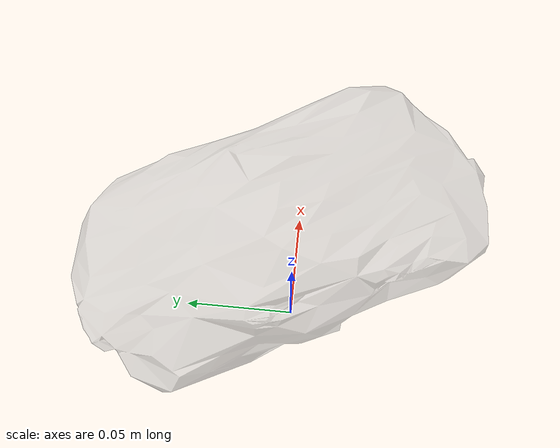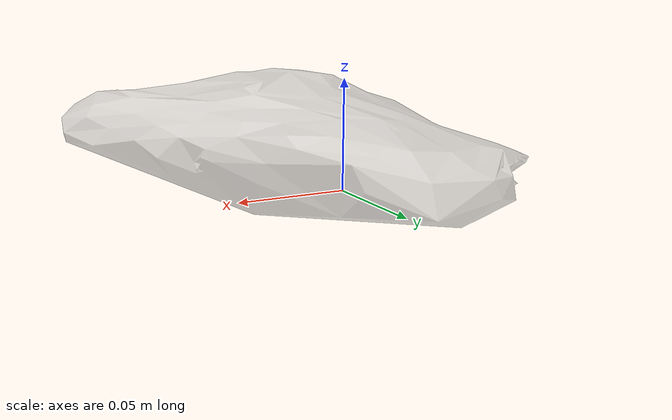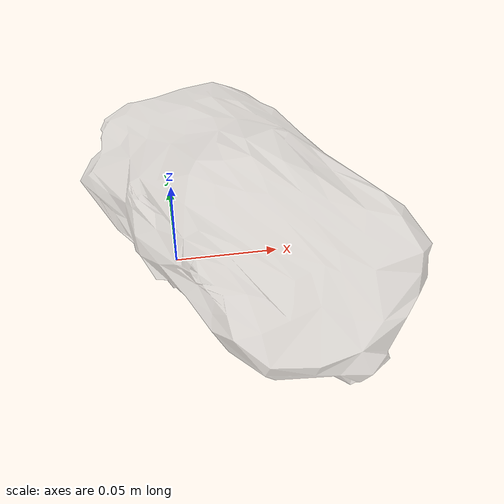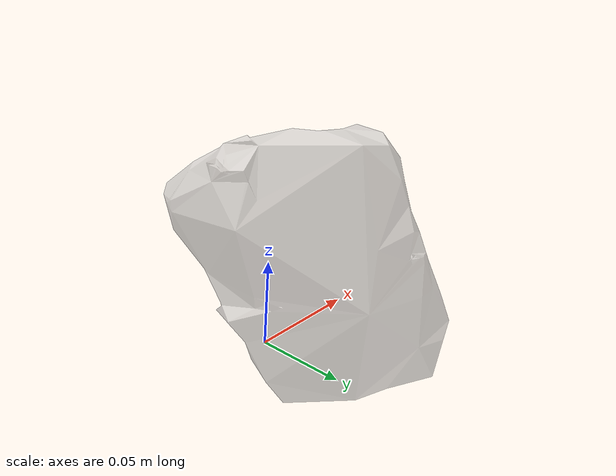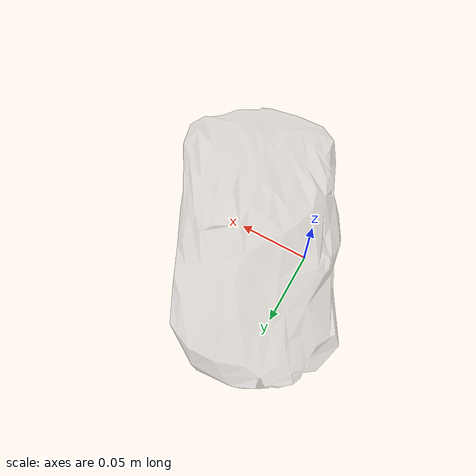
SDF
<?xml version="1.0" ?>
<sdf version="1.4">
  <model name="safety_works_safety_glasses">
    <link name="safety_works_safety_glasses_link">
      <inertial>
        <pose>0 0 0 0 0 0</pose>
        <mass>0.08</mass>
      </inertial>

      <visual name="safety_works_safety_glasses_visual">
        <pose>0 0 0 0 0 0</pose>
        <material>
          <script>
            <uri>model://safety_works_safety_glasses/materials/scripts</uri>
            <uri>model://safety_works_safety_glasses/materials/textures</uri>
            <name>safety_works_safety_glasses</name>
          </script>
        </material>
        <geometry>
          <mesh>
            <uri>model://safety_works_safety_glasses/meshes/safety_works_safety_glasses.dae</uri>
          </mesh>
        </geometry>
      </visual>

      <collision name="safety_works_safety_glasses_collision">
        <pose>0 0 0 0 0 0</pose>
        <geometry>
          <box>
            <size>0.01 0.01 0.01</size>
          </box>
           # <mesh>
           #   <uri>model://safety_works_safety_glasses/meshes/safety_works_safety_glasses.dae</uri>
           # </mesh>
        </geometry>
        <surface>
          <friction>
            <ode>
              <mu>0.8</mu>
              <mu2>0.8</mu2>
              <fdir1>0.0 0.0 0.0</fdir1>
              <slip1>0.01</slip1>
              <slip2>0.01</slip2>
            </ode>
          </friction>
        </surface>
      </collision>

    </link>
  </model>
</sdf>
